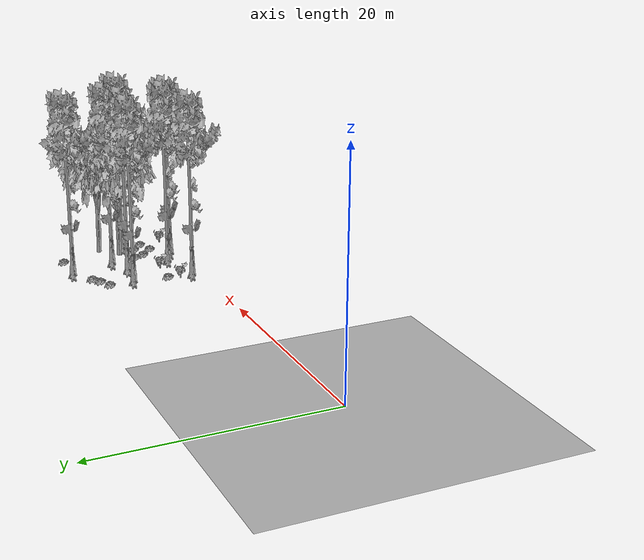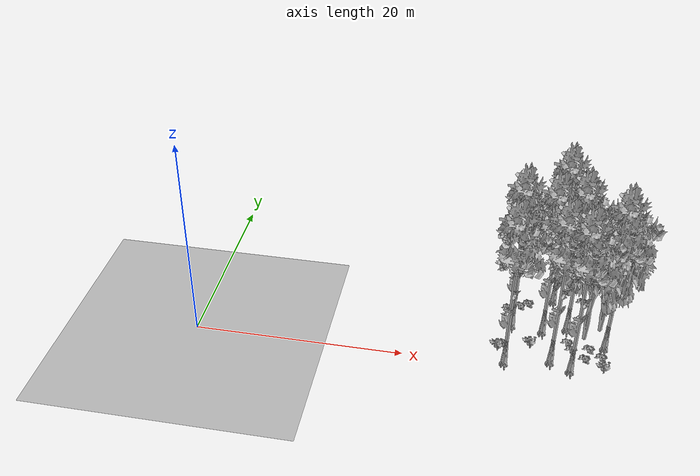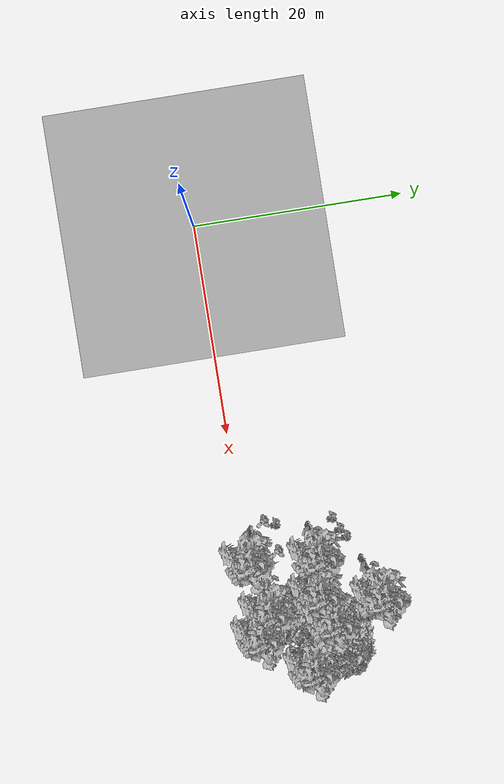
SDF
<sdf version="1.7">
 <world name="default">
  <model name="ground_plane">
   <static>1</static>
   <link name="link">
    <collision name="collision">
     <pose>-50 0 0 0 -0 0</pose>
     <geometry><plane><normal>0 0 1</normal><size>80 80</size></plane></geometry>
     <surface><contact><ode><min_depth>0.01</min_depth><max_vel>0</max_vel></ode></contact></surface>
    </collision>
    <visual name="grass">
     <cast_shadows>0</cast_shadows>
     <geometry>
      <mesh>
       <scale>0.46714285714285714 0.46714285714285714 0.1</scale>
       <uri>file://grass_plane/meshes/grass_plane.dae</uri>
      </mesh>
     </geometry>
    </visual>
   </link>
  </model>
  <model name="Tree 7">
   <static>1</static>
   <pose>33.64034249217025 1.6677716763315331 0 1.57079 -0 0</pose>
   <link name="link">
    <collision name="collision">
     <geometry><mesh><scale>3.5 5 3.5</scale><uri>model://tree_9/meshes/tree_9.obj</uri></mesh></geometry>
    </collision>
    <visual name="visual">
     <geometry><mesh><scale>3.5 5 3.5</scale><uri>model://tree_9/meshes/tree_9.obj</uri></mesh></geometry>
    </visual>
   </link>
  </model>
  <model name="Tree 23">
   <static>1</static>
   <pose>29.883063627734813 6.254103521265762 0 1.57079 -0 0</pose>
   <link name="link">
    <collision name="collision">
     <geometry><mesh><scale>3.5 5 3.5</scale><uri>model://tree_9/meshes/tree_9.obj</uri></mesh></geometry>
    </collision>
    <visual name="visual">
     <geometry><mesh><scale>3.5 5 3.5</scale><uri>model://tree_9/meshes/tree_9.obj</uri></mesh></geometry>
    </visual>
   </link>
  </model>
  <model name="Tree 251">
   <static>1</static>
   <pose>33.795792770625155 10.788719257073822 0 1.57079 -0 0</pose>
   <link name="link">
    <collision name="collision">
     <geometry><mesh><scale>3.5 5 3.5</scale><uri>model://tree_9/meshes/tree_9.obj</uri></mesh></geometry>
    </collision>
    <visual name="visual">
     <geometry><mesh><scale>3.5 5 3.5</scale><uri>model://tree_9/meshes/tree_9.obj</uri></mesh></geometry>
    </visual>
   </link>
  </model>
  <model name="Tree 279">
   <static>1</static>
   <pose>35.4788430067419 0.7668607116510273 0 1.57079 -0 0</pose>
   <link name="link">
    <collision name="collision">
     <geometry><mesh><scale>3.5 5 3.5</scale><uri>model://tree_9/meshes/tree_9.obj</uri></mesh></geometry>
    </collision>
    <visual name="visual">
     <geometry><mesh><scale>3.5 5 3.5</scale><uri>model://tree_9/meshes/tree_9.obj</uri></mesh></geometry>
    </visual>
   </link>
  </model>
  <model name="Tree 290">
   <static>1</static>
   <pose>36.683246806291805 5.432495208210753 0 1.57079 -0 0</pose>
   <link name="link">
    <collision name="collision">
     <geometry><mesh><scale>3.5 5 3.5</scale><uri>model://tree_2/meshes/tree_2.obj</uri></mesh></geometry>
    </collision>
    <visual name="visual">
     <geometry><mesh><scale>3.5 5 3.5</scale><uri>model://tree_2/meshes/tree_2.obj</uri></mesh></geometry>
    </visual>
   </link>
  </model>
  <model name="Tree 340">
   <static>1</static>
   <pose>29.44268414900543 0.7819174464178857 0 1.57079 -0 0</pose>
   <link name="link">
    <collision name="collision">
     <geometry><mesh><scale>3.5 5 3.5</scale><uri>model://tree_9/meshes/tree_9.obj</uri></mesh></geometry>
    </collision>
    <visual name="visual">
     <geometry><mesh><scale>3.5 5 3.5</scale><uri>model://tree_9/meshes/tree_9.obj</uri></mesh></geometry>
    </visual>
   </link>
  </model>
  <model name="Tree 405">
   <static>1</static>
   <pose>35.127152122222796 6.65633693861561 0 1.57079 -0 0</pose>
   <link name="link">
    <collision name="collision">
     <geometry><mesh><scale>3.5 5 3.5</scale><uri>model://tree_9/meshes/tree_9.obj</uri></mesh></geometry>
    </collision>
    <visual name="visual">
     <geometry><mesh><scale>3.5 5 3.5</scale><uri>model://tree_9/meshes/tree_9.obj</uri></mesh></geometry>
    </visual>
   </link>
  </model>
  <model name="Tree 406">
   <static>1</static>
   <pose>38.6481480445497 4.5529685954177594 0 1.57079 -0 0</pose>
   <link name="link">
    <collision name="collision">
     <geometry><mesh><scale>3.5 5 3.5</scale><uri>model://tree_9/meshes/tree_9.obj</uri></mesh></geometry>
    </collision>
    <visual name="visual">
     <geometry><mesh><scale>3.5 5 3.5</scale><uri>model://tree_9/meshes/tree_9.obj</uri></mesh></geometry>
    </visual>
   </link>
  </model>
  <model name="Tree 507">
   <static>1</static>
   <pose>32.822790698714826 5.8611199229840665 0 1.57079 -0 0</pose>
   <link name="link">
    <collision name="collision">
     <geometry><mesh><scale>3.5 5 3.5</scale><uri>model://tree_9/meshes/tree_9.obj</uri></mesh></geometry>
    </collision>
    <visual name="visual">
     <geometry><mesh><scale>3.5 5 3.5</scale><uri>model://tree_9/meshes/tree_9.obj</uri></mesh></geometry>
    </visual>
   </link>
  </model>
  <model name="Tree 533">
   <static>1</static>
   <pose>38.18469999948891 6.9444772124728615 0 1.57079 -0 0</pose>
   <link name="link">
    <collision name="collision">
     <geometry><mesh><scale>3.5 5 3.5</scale><uri>model://tree_2/meshes/tree_2.obj</uri></mesh></geometry>
    </collision>
    <visual name="visual">
     <geometry><mesh><scale>3.5 5 3.5</scale><uri>model://tree_2/meshes/tree_2.obj</uri></mesh></geometry>
    </visual>
   </link>
  </model>
  <model name="Bush 78">
   <static>1</static>
   <pose>28.741593681327842 2.185605335293147 0 1.57079 -0 0</pose>
   <link name="link">
    <collision name="collision">
     <geometry><mesh><scale>2 2 2</scale><uri>model://bush_0/meshes/bush_0.obj</uri></mesh></geometry>
     <surface><contact><collide_without_contact>false</collide_without_contact></contact></surface>
    </collision>
    <visual name="visual">
     <geometry><mesh><scale>2 2 2</scale><uri>model://bush_0/meshes/bush_0.obj</uri></mesh></geometry>
    </visual>
   </link>
  </model>
  <model name="Bush 172">
   <static>1</static>
   <pose>36.6132404089369 10.871401980269098 0 1.57079 -0 0</pose>
   <link name="link">
    <collision name="collision">
     <geometry><mesh><scale>2 2 2</scale><uri>model://bush_2/meshes/bush_2.obj</uri></mesh></geometry>
     <surface><contact><collide_without_contact>false</collide_without_contact></contact></surface>
    </collision>
    <visual name="visual">
     <geometry><mesh><scale>2 2 2</scale><uri>model://bush_2/meshes/bush_2.obj</uri></mesh></geometry>
    </visual>
   </link>
  </model>
  <model name="Bush 270">
   <static>1</static>
   <pose>29.153598147826855 3.1869153476734553 0 1.57079 -0 0</pose>
   <link name="link">
    <collision name="collision">
     <geometry><mesh><scale>2 2 2</scale><uri>model://bush_2/meshes/bush_2.obj</uri></mesh></geometry>
     <surface><contact><collide_without_contact>false</collide_without_contact></contact></surface>
    </collision>
    <visual name="visual">
     <geometry><mesh><scale>2 2 2</scale><uri>model://bush_2/meshes/bush_2.obj</uri></mesh></geometry>
    </visual>
   </link>
  </model>
  <model name="Bush 305">
   <static>1</static>
   <pose>38.29678794293801 2.8577417762665505 0 1.57079 -0 0</pose>
   <link name="link">
    <collision name="collision">
     <geometry><mesh><scale>2 2 2</scale><uri>model://bush_2/meshes/bush_2.obj</uri></mesh></geometry>
     <surface><contact><collide_without_contact>false</collide_without_contact></contact></surface>
    </collision>
    <visual name="visual">
     <geometry><mesh><scale>2 2 2</scale><uri>model://bush_2/meshes/bush_2.obj</uri></mesh></geometry>
    </visual>
   </link>
  </model>
  <model name="Bush 355">
   <static>1</static>
   <pose>31.33478367710144 9.658718299797869 0 1.57079 -0 0</pose>
   <link name="link">
    <collision name="collision">
     <geometry><mesh><scale>2 2 2</scale><uri>model://bush_2/meshes/bush_2.obj</uri></mesh></geometry>
     <surface><contact><collide_without_contact>false</collide_without_contact></contact></surface>
    </collision>
    <visual name="visual">
     <geometry><mesh><scale>2 2 2</scale><uri>model://bush_2/meshes/bush_2.obj</uri></mesh></geometry>
    </visual>
   </link>
  </model>
  <model name="Bush 360">
   <static>1</static>
   <pose>31.735070638529706 3.0940975978230654 0 1.57079 -0 0</pose>
   <link name="link">
    <collision name="collision">
     <geometry><mesh><scale>2 2 2</scale><uri>model://bush_0/meshes/bush_0.obj</uri></mesh></geometry>
     <surface><contact><collide_without_contact>false</collide_without_contact></contact></surface>
    </collision>
    <visual name="visual">
     <geometry><mesh><scale>2 2 2</scale><uri>model://bush_0/meshes/bush_0.obj</uri></mesh></geometry>
    </visual>
   </link>
  </model>
  <model name="Bush 372">
   <static>1</static>
   <pose>35.55876280585858 3.4511473124371292 0 1.57079 -0 0</pose>
   <link name="link">
    <collision name="collision">
     <geometry><mesh><scale>2 2 2</scale><uri>model://bush_2/meshes/bush_2.obj</uri></mesh></geometry>
     <surface><contact><collide_without_contact>false</collide_without_contact></contact></surface>
    </collision>
    <visual name="visual">
     <geometry><mesh><scale>2 2 2</scale><uri>model://bush_2/meshes/bush_2.obj</uri></mesh></geometry>
    </visual>
   </link>
  </model>
  <model name="Bush 395">
   <static>1</static>
   <pose>36.76664024128391 2.3834557468840387 0 1.57079 -0 0</pose>
   <link name="link">
    <collision name="collision">
     <geometry><mesh><scale>2 2 2</scale><uri>model://bush_2/meshes/bush_2.obj</uri></mesh></geometry>
     <surface><contact><collide_without_contact>false</collide_without_contact></contact></surface>
    </collision>
    <visual name="visual">
     <geometry><mesh><scale>2 2 2</scale><uri>model://bush_2/meshes/bush_2.obj</uri></mesh></geometry>
    </visual>
   </link>
  </model>
  <model name="Bush 404">
   <static>1</static>
   <pose>29.38257102519529 8.596304510120675 0 1.57079 -0 0</pose>
   <link name="link">
    <collision name="collision">
     <geometry><mesh><scale>2 2 2</scale><uri>model://bush_2/meshes/bush_2.obj</uri></mesh></geometry>
     <surface><contact><collide_without_contact>false</collide_without_contact></contact></surface>
    </collision>
    <visual name="visual">
     <geometry><mesh><scale>2 2 2</scale><uri>model://bush_2/meshes/bush_2.obj</uri></mesh></geometry>
    </visual>
   </link>
  </model>
  <model name="Bush 414">
   <static>1</static>
   <pose>35.18294529079668 4.377719473112059 0 1.57079 -0 0</pose>
   <link name="link">
    <collision name="collision">
     <geometry><mesh><scale>2 2 2</scale><uri>model://bush_2/meshes/bush_2.obj</uri></mesh></geometry>
     <surface><contact><collide_without_contact>false</collide_without_contact></contact></surface>
    </collision>
    <visual name="visual">
     <geometry><mesh><scale>2 2 2</scale><uri>model://bush_2/meshes/bush_2.obj</uri></mesh></geometry>
    </visual>
   </link>
  </model>
  <model name="Bush 424">
   <static>1</static>
   <pose>38.456763228138456 0.8512785126835638 0 1.57079 -0 0</pose>
   <link name="link">
    <collision name="collision">
     <geometry><mesh><scale>2 2 2</scale><uri>model://bush_0/meshes/bush_0.obj</uri></mesh></geometry>
     <surface><contact><collide_without_contact>false</collide_without_contact></contact></surface>
    </collision>
    <visual name="visual">
     <geometry><mesh><scale>2 2 2</scale><uri>model://bush_0/meshes/bush_0.obj</uri></mesh></geometry>
    </visual>
   </link>
  </model>
  <model name="Bush 432">
   <static>1</static>
   <pose>37.181261428770256 3.8332403341448895 0 1.57079 -0 0</pose>
   <link name="link">
    <collision name="collision">
     <geometry><mesh><scale>2 2 2</scale><uri>model://bush_2/meshes/bush_2.obj</uri></mesh></geometry>
     <surface><contact><collide_without_contact>false</collide_without_contact></contact></surface>
    </collision>
    <visual name="visual">
     <geometry><mesh><scale>2 2 2</scale><uri>model://bush_2/meshes/bush_2.obj</uri></mesh></geometry>
    </visual>
   </link>
  </model>
  <model name="Bush 484">
   <static>1</static>
   <pose>30.542868454228923 9.145424558459709 0 1.57079 -0 0</pose>
   <link name="link">
    <collision name="collision">
     <geometry><mesh><scale>2 2 2</scale><uri>model://bush_2/meshes/bush_2.obj</uri></mesh></geometry>
     <surface><contact><collide_without_contact>false</collide_without_contact></contact></surface>
    </collision>
    <visual name="visual">
     <geometry><mesh><scale>2 2 2</scale><uri>model://bush_2/meshes/bush_2.obj</uri></mesh></geometry>
    </visual>
   </link>
  </model>
 </world>
</sdf>
